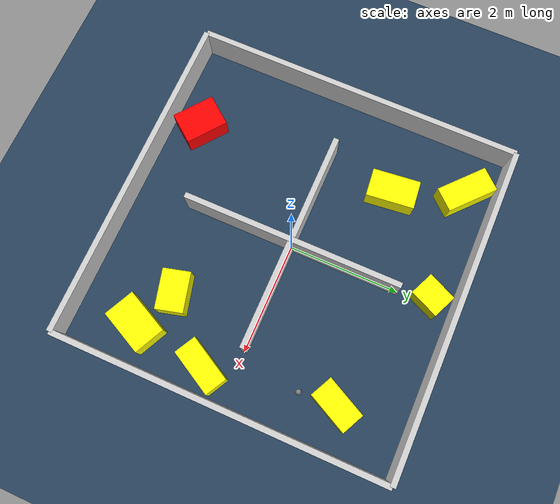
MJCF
<?xml version="1.0" ?>
<mujoco model="generated_environment">
  <option timestep="0.01" integrator="RK4" cone="elliptic"/>
  <default>
    <geom density="1"/>
  </default>
  <asset>
    <texture builtin="gradient" height="3072" rgb1="0.3 0.5 0.7" rgb2="0 0 0" type="skybox" width="512"/>
    <texture builtin="checker" height="300" mark="edge" markrgb="0.8 0.8 0.8" name="groundplane" rgb1="0.2 0.3 0.4" rgb2="0.1 0.2 0.3" type="2d" width="300"/>
    <material name="groundplane" reflectance="0.2" texrepeat="5 5" texture="groundplane" texuniform="true"/>
    <material name="robot" rgba="0.0 1.0 0.0 1"/>
  </asset>
  <worldbody>
    <light dir="0 0 -1" directional="true" pos="0 0 1.5"/>
    <geom condim="4" friction="1.0 0.005 0.001" material="groundplane" name="floor" size="0 0 0.05" type="plane"/>
    <body name="walls">
      <geom name="wall_1" condim="4" pos="-3.0 0.0 0.3" rgba="0.800000011920929 0.800000011920929 0.800000011920929 1.0" size="0.05 3.0 0.3" type="box"/>
      <geom name="wall_2" condim="4" pos="3.0 0.0 0.3" rgba="0.800000011920929 0.800000011920929 0.800000011920929 1.0" size="0.05 3.0 0.3" type="box"/>
      <geom name="wall_3" condim="4" pos="0.0 -3.0 0.3" rgba="0.800000011920929 0.800000011920929 0.800000011920929 1.0" size="3.0 0.05 0.3" type="box"/>
      <geom name="wall_4" condim="4" pos="0.0 3.0 0.3" rgba="0.800000011920929 0.800000011920929 0.800000011920929 1.0" size="3.0 0.05 0.3" type="box"/>
      <geom name="wall_5" condim="4" pos="1.0 0.0 0.3" rgba="0.800000011920929 0.800000011920929 0.800000011920929 1.0" size="1.0 0.05 0.3" type="box"/>
      <geom name="wall_6" condim="4" pos="-1.0 0.0 0.3" rgba="0.800000011920929 0.800000011920929 0.800000011920929 1.0" size="1.0 0.05 0.3" type="box"/>
      <geom name="wall_7" condim="4" pos="0.0 -1.0 0.3" rgba="0.800000011920929 0.800000011920929 0.800000011920929 1.0" size="0.05 1.0 0.3" type="box"/>
      <geom name="wall_8" condim="4" pos="0.0 1.0 0.3" rgba="0.800000011920929 0.800000011920929 0.800000011920929 1.0" size="0.05 1.0 0.3" type="box"/>
    </body>
    <body name="robot">
      <joint name="joint_x" type="slide" pos="0 0 0" axis="1 0 0"/>
      <joint name="joint_y" type="slide" pos="0 0 0" axis="0 1 0"/>
      <geom name="robot" type="sphere" pos="2.2471230989628146 1.1122644810806488 0.2" size="0.05" mass="5." friction="1.0 0.005 0.0001" condim="4"/>
      <site name="sensor_ball"/>
    </body>
    <body name="obstacle_1_movable">
      <geom name="obstacle_1_movable" condim="4" pos="2.301695495438414 -1.8577290853784194 0.2" euler="0 0 64.09573520368777" friction="1.0 0.005 0.001" rgba="1 1 0 1" size="0.4251423468007117 0.2865721614635267 0.2" type="box" mass="0.1"/>
      <joint type="free"/>
    </body>
    <body name="obstacle_2_movable">
      <geom name="obstacle_2_movable" condim="4" pos="2.5103773729407983 -0.5352218416989554 0.2" euler="0 0 331.2431040407759" friction="1.0 0.005 0.001" rgba="1 1 0 1" size="0.20635978539057784 0.43915471561237207 0.2" type="box" mass="0.1"/>
      <joint type="free"/>
    </body>
    <body name="obstacle_3_movable">
      <geom name="obstacle_3_movable" condim="4" pos="-2.118118994014367 2.4522811401215843 0.2" euler="0 0 227.90858641552865" friction="1.0 0.005 0.001" rgba="1 1 0 1" size="0.22437598509717707 0.4725235929318366 0.2" type="box" mass="0.1"/>
      <joint type="free"/>
    </body>
    <body name="obstacle_4_static">
      <geom name="obstacle_4_static" condim="4" pos="-1.4551523679188443 -2.4355647597087065 0.2" euler="0 0 322.08204417478987" friction="1.0 0.005 0.001" rgba="1 0 0 1" size="0.3897646878285017 0.2960008083398019 0.2" type="box"/>
    </body>
    <body name="obstacle_5_movable">
      <geom name="obstacle_5_movable" condim="4" pos="-1.6134318523641515 1.256301601366343 0.2" euler="0 0 6.1417717345079215" friction="1.0 0.005 0.001" rgba="1 1 0 1" size="0.2566485794897657 0.4321239538039412 0.2" type="box" mass="0.1"/>
      <joint type="free"/>
    </body>
    <body name="obstacle_6_movable">
      <geom name="obstacle_6_movable" condim="4" pos="1.5651480410166627 -1.4992040223065006 0.2" euler="0 0 284.59778665182796" friction="1.0 0.005 0.001" rgba="1 1 0 1" size="0.24693581169148296 0.35969615209365047 0.2" type="box" mass="0.1"/>
      <joint type="free"/>
    </body>
    <body name="obstacle_7_movable">
      <geom name="obstacle_7_movable" condim="4" pos="2.197153297830846 1.7578881780964002 0.2" euler="0 0 243.56177199562177" friction="1.0 0.005 0.001" rgba="1 1 0 1" size="0.3957754560505258 0.21589250049412312 0.2" type="box" mass="0.1"/>
      <joint type="free"/>
    </body>
    <body name="obstacle_8_movable">
      <geom name="obstacle_8_movable" condim="4" pos="-0.11071081048626441 2.5560137933604414 0.2" euler="0 0 245.86258681442726" friction="1.0 0.005 0.001" rgba="1 1 0 1" size="0.2769963719210118 0.22994605600871096 0.2" type="box" mass="0.1"/>
      <joint type="free"/>
    </body>
  </worldbody>
  <actuator>
    <motor name="actuator_x" joint="joint_x" gear="1" ctrlrange="-1 1"/>
    <motor name="actuator_y" joint="joint_y" gear="1" ctrlrange="-1 1"/>
  </actuator>
</mujoco>
